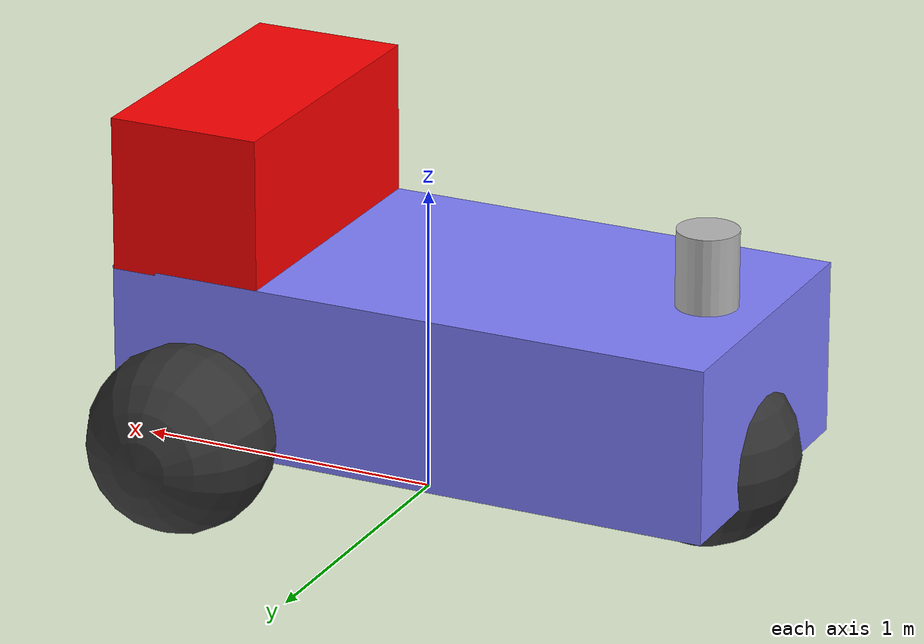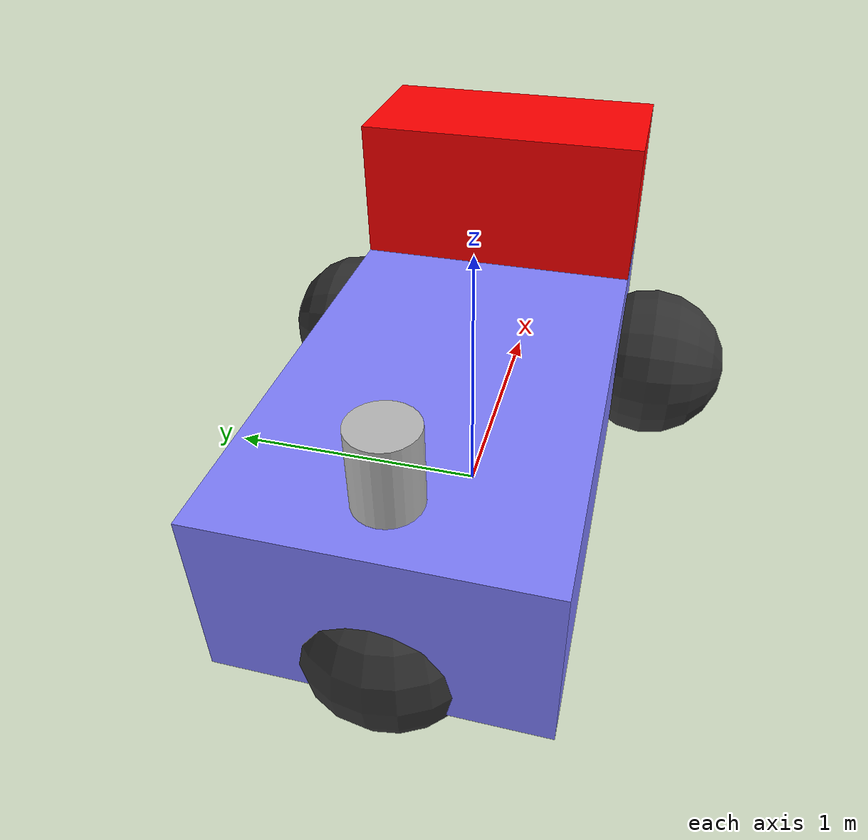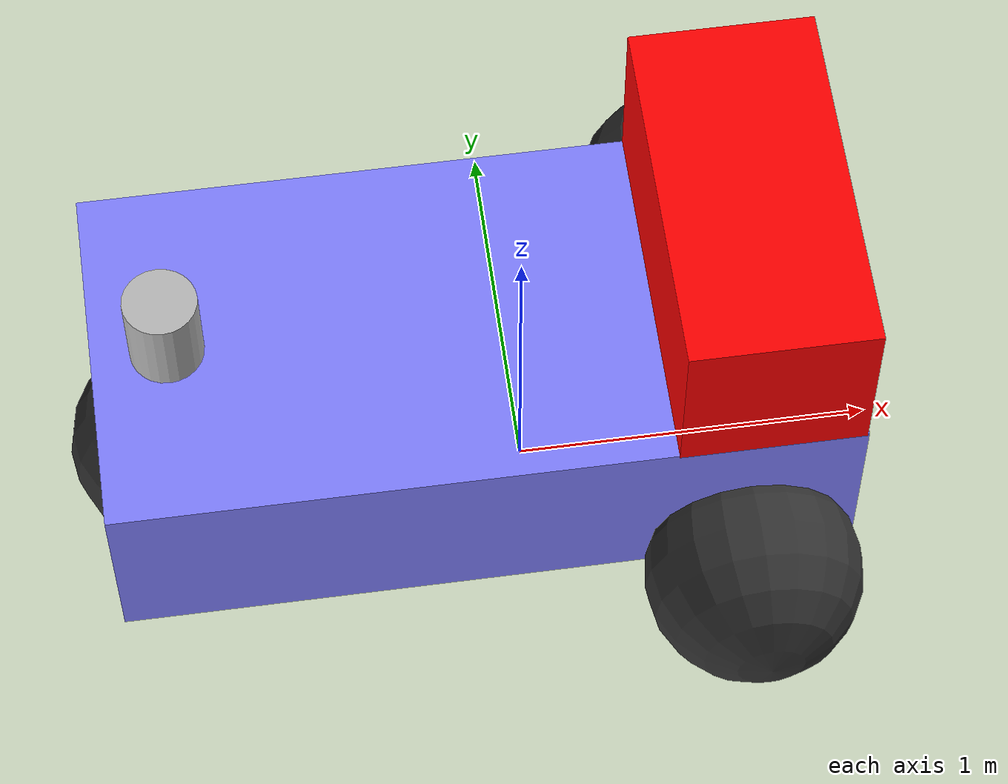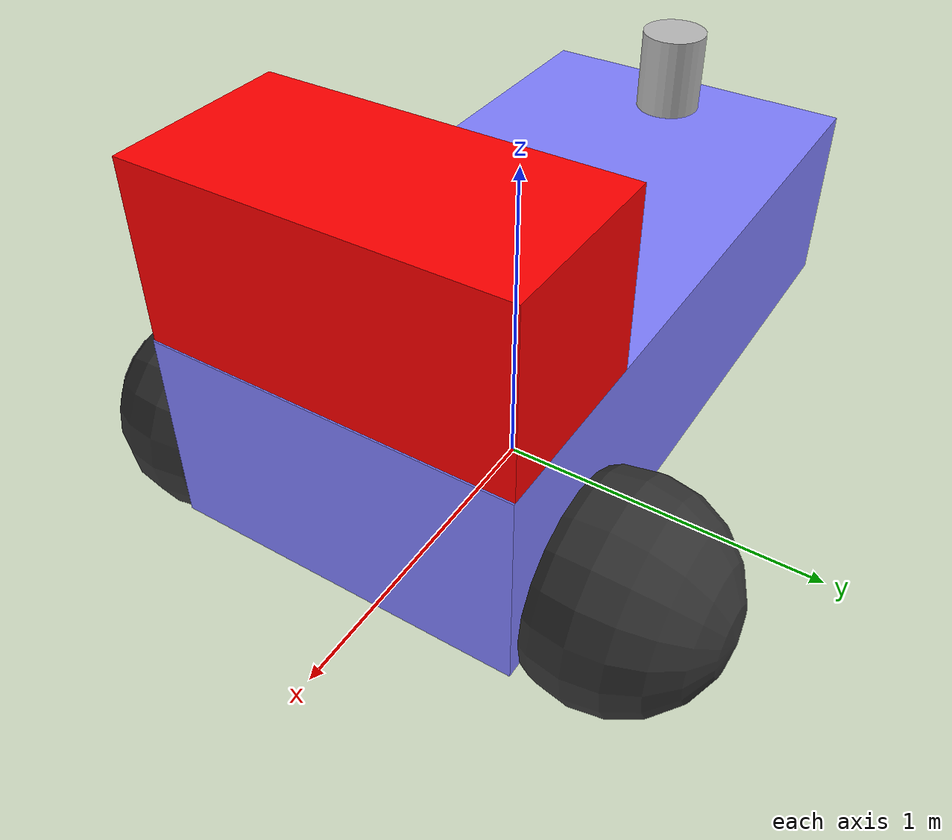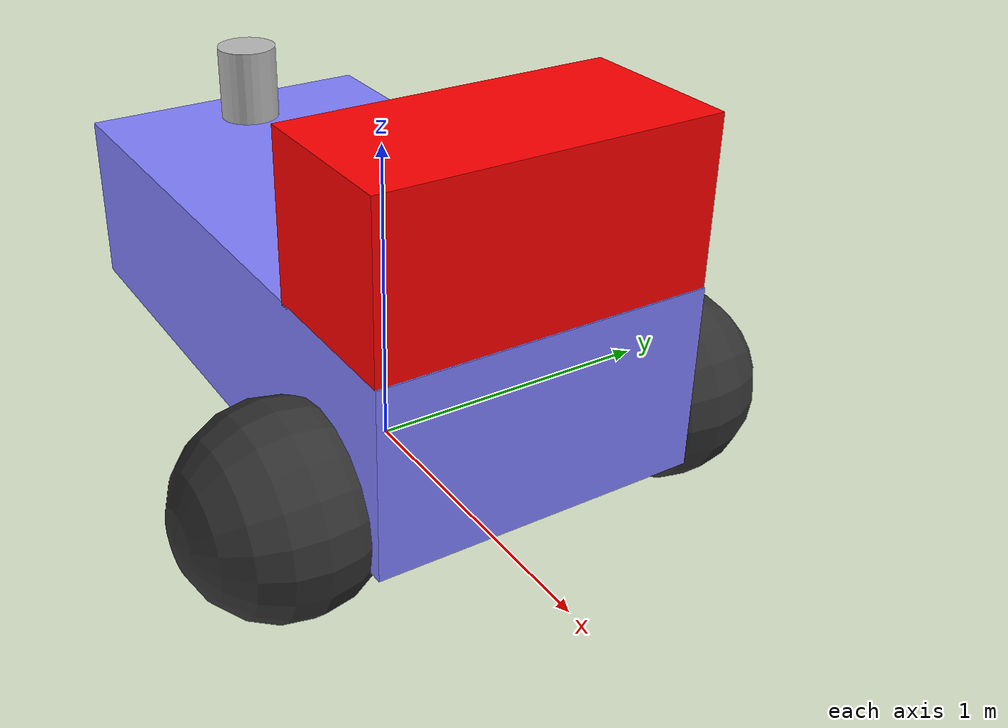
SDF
<?xml version="1.0" ?>
<sdf version="1.7">
  <world name="world_custom_model">
    <model name="robot">
      <include>
        <uri>base</uri>

        <experimental:params>
          <visual element_id="chassis::lidar_visual" action="remove"/>
          <sensor element_id="chassis::lidar" action="remove"/>

          <visual element_id="chassis" name="camera_visual" action="add">
            <pose>-1.06 0 0 0 0 3.14</pose>
            <geometry>
              <box>
                <size>0.1 0.1 0.1</size>
              </box>
            </geometry>
          </visual>

          <sensor element_id="top_model::top_camera::top_camera_link::camera" action="modify">
            <pose>0 0 0 0 0 3.14</pose>
            <update_rate>60</update_rate>
          </sensor>

          <visual element_id="top_model::top_camera::top_camera_link::camera_visual">
            <geometry action="replace">
              <sphere>
                <radius>0.05</radius>
              </sphere>
            </geometry>
            <material action="modify">
              <!-- blue -->
              <ambient>0 0 1 1</ambient>
              <diffuse>0 0 1 1</diffuse>
            </material>
          </visual>

          <collision element_id="top_model::top_camera::top_camera_link" name="camera_collision" action="add">
            <pose>-0.2 0 0.3 0 0 3.14</pose>
            <geometry>
              <sphere>
                <radius>0.05</radius>
              </sphere>
            </geometry>
          </collision>
        </experimental:params>
      </include>
    </model>

  </world>
</sdf>

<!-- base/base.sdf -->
<sdf version="1.7">
  <model name="base">
    <pose>0 0 0.325 0 -0 0</pose>

    <link name='chassis'>
      <pose>-0.151427 -0 0.175 0 -0 0</pose>
      <inertial>
        <mass>1.14395</mass>
        <inertia>
          <ixx>0.126164</ixx>
          <ixy>0</ixy>
          <ixz>0</ixz>
          <iyy>0.416519</iyy>
          <iyz>0</iyz>
          <izz>0.481014</izz>
        </inertia>
      </inertial>
      <visual name='visual'>
        <geometry>
          <box>
            <size>2.01142 1 0.568726</size>
          </box>
        </geometry>
        <material>
          <ambient>0.5 0.5 1.0 1</ambient>
          <diffuse>0.5 0.5 1.0 1</diffuse>
          <specular>0.0 0.0 1.0 1</specular>
        </material>
      </visual>
      <collision name='collision'>
        <geometry>
          <box>
            <size>2.01142 1 0.568726</size>
          </box>
        </geometry>
      </collision>

      <visual name="lidar_visual">
        <pose>-0.8 0 0.41 0 0 0</pose>
          <geometry>
              <cylinder>
                  <radius>0.1</radius>
                  <length>0.25</length>
              </cylinder>
          </geometry>
      </visual>

      <sensor name='lidar' type='gpu_lidar'>
        <pose>-0.8 0 0.41 0 0 0</pose>
        <topic>lidar</topic>
        <update_rate>10</update_rate>
        <lidar>
          <scan>
            <horizontal>
              <samples>640</samples>
              <resolution>1</resolution>
              <min_angle>-1.396263</min_angle>
              <max_angle>1.396263</max_angle>
            </horizontal>
            <vertical>
              <samples>16</samples>
              <resolution>1</resolution>
              <min_angle>-0.261799</min_angle>
              <max_angle>0.261799</max_angle>
            </vertical>
          </scan>
          <range>
            <min>0.08</min>
            <max>10.0</max>
            <resolution>0.01</resolution>
          </range>
        </lidar>
        <alwaysOn>1</alwaysOn>
        <visualize>true</visualize>
      </sensor>

      <sensor name="camera" type="camera">
        <pose>-1.06 0 0 0 0 3.14</pose>
        <camera>
          <horizontal_fov>1.047</horizontal_fov>
          <image>
            <width>320</width>
            <height>240</height>
          </image>
          <clip>
            <near>0.1</near>
            <far>100</far>
          </clip>
        </camera>
        <always_on>1</always_on>
        <update_rate>30</update_rate>
        <visualize>true</visualize>
        <topic>chassis/camera</topic>
      </sensor>

    </link>

    <include>
      <uri>top_model</uri>
    </include>

    <joint name="top_to_base" type="fixed">
      <parent>chassis</parent>
      <child>top_model::top</child>
    </joint>

    <include>
      <uri>wheel</uri>
      <pose>0.554283 0.625029 -0.025 -1.5707 0 0</pose>
      <name>left_wheel</name>
    </include>

    <include>
      <uri>wheel</uri>
      <pose>0.554282 -0.625029 -0.025 -1.5707 0 0</pose>
      <name>right_wheel</name>
    </include>

    <include>
      <uri>wheel</uri>
      <pose>-0.957138 -0 -0.025 0 -0 0</pose>
      <name>caster</name>
    </include>

    <joint name='left_wheel_joint' type='revolute'>
      <parent>chassis</parent>
      <child>left_wheel::wheel_link</child>
      <axis>
        <xyz>0 0 1</xyz>
        <limit>
          <lower>-1.79769e+308</lower>
          <upper>1.79769e+308</upper>
        </limit>
      </axis>
    </joint>

    <joint name='right_wheel_joint' type='revolute'>
      <parent>chassis</parent>
      <child>right_wheel::wheel_link</child>
      <axis>
        <xyz>0 0 1</xyz>
        <limit>
          <lower>-1.79769e+308</lower>
          <upper>1.79769e+308</upper>
        </limit>
      </axis>
    </joint>

    <joint name='caster_wheel' type='ball'>
      <parent>chassis</parent>
      <child>caster::wheel_link</child>
    </joint>

  </model>
</sdf>

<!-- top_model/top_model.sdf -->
<sdf version="1.7">
  <model name='top_model'>

    <link name="top">
      <pose>0.6 0 0.7 0 0 0</pose>
      <collision name="top_collision">
        <geometry>
          <box>
            <size>0.5 1 0.5</size>
          </box>
        </geometry>
      </collision>
      <visual name="top_visual">
        <geometry>
          <box>
            <size>0.5 1 0.5</size>
          </box>
        </geometry>
        <material>
          <ambient>1 0 0 1</ambient>
          <diffuse>1 0 0 1</diffuse>
          <specular>1 0 0 1</specular>
        </material>
      </visual>
    </link>

    <include>
      <uri>top_camera</uri>
      <pose relative_to="top">0 0 0 0 0 0</pose>
    </include>

    <joint name="top_to_camera" type="fixed">
      <parent>top</parent>
      <child>top_camera::top_camera_link</child>
    </joint>

  </model>
</sdf>

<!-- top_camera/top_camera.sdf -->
<sdf version="1.7">
  <model name='top_camera'>

    <link name="top_camera_link">
      <visual name="camera_visual">
        <pose>-0.2 0 0.3 0 0 3.14</pose>
        <geometry>
          <box>
            <size>0.1 0.1 0.1</size>
          </box>
        </geometry>
        <material>
          <ambient>0 1 0 1</ambient>
          <diffuse>0 1 0 1</diffuse>
          <specular>0.5 0.5 0.5 1</specular>
        </material>
      </visual>

      <sensor name="camera" type="camera">
        <pose>-0.2 0 0.3 0 0.0 0</pose>
        <camera>
          <horizontal_fov>1.047</horizontal_fov>
          <image>
            <width>320</width>
            <height>240</height>
          </image>
          <clip>
            <near>0.1</near>
            <far>100</far>
          </clip>
        </camera>
        <always_on>1</always_on>
        <update_rate>30</update_rate>
        <visualize>true</visualize>
        <topic>top/camera</topic>
      </sensor>
    </link>
  </model>
</sdf>

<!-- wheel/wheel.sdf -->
<sdf version="1.7">
  <model name="wheel">
    <link name='wheel_link'>
      <pose>0 0 0 0 0 0</pose>
      <inertial>
        <mass>2</mass>
        <inertia>
          <ixx>0.145833</ixx>
          <ixy>0</ixy>
          <ixz>0</ixz>
          <iyy>0.145833</iyy>
          <iyz>0</iyz>
          <izz>0.125</izz>
        </inertia>
      </inertial>
      <visual name='visual'>
        <geometry>
          <sphere>
            <radius>0.3</radius>
          </sphere>
        </geometry>
        <material>
          <ambient>0.2 0.2 0.2 1</ambient>
          <diffuse>0.2 0.2 0.2 1</diffuse>
          <specular>0.2 0.2 0.2 1</specular>
        </material>
      </visual>
      <collision name='collision'>
        <geometry>
          <sphere>
            <radius>0.3</radius>
          </sphere>
        </geometry>
      </collision>
    </link>
  </model>
</sdf>
